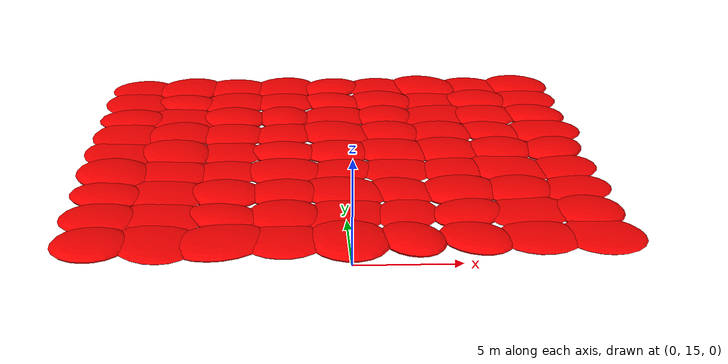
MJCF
<mujoco model="random_box_terrain">
    <compiler angle="degree" coordinate="local"/>
    <option timestep="0.01" gravity="0 0 -9.81" integrator="RK4"/>

    <asset>
        <texture type="2d" name="Plastic006_color"      file="../../textures/Plastic006_2K-PNG/Plastic006_2K-PNG_Color.png"/>
        <texture type="2d" name="Plastic006_roughness"  file="../../textures/Plastic006_2K-PNG/Plastic006_2K-PNG_Roughness.png"/>
        <texture type="2d" name="Plastic006_normal"     file="../../textures/Plastic006_2K-PNG/Plastic006_2K-PNG_NormalDX.png"/>

        <material name="pbr_plastic_black" metallic ="0.05" roughness="1.0" rgba="1 0 0 1.0">
        <layer role="rgb"        texture="Plastic006_color"/>
        <layer role="normal"     texture="Plastic006_normal"/>
        <layer role="roughness"  texture="Plastic006_roughness"/>
        </material>

        <texture type="2d" name="Plastic013A_color"      file="../../textures/Plastic013A_2K-PNG/Plastic013A_2K-PNG_Color.png"/>
        <texture type="2d" name="Plastic013A_roughness"  file="../../textures/Plastic013A_2K-PNG/Plastic013A_2K-PNG_Roughness.png"/>
        <texture type="2d" name="Plastic013A_normal"     file="../../textures/Plastic013A_2K-PNG/Plastic013A_2K-PNG_NormalDX.png"/>

        <material name="pbr_plastic_white" metallic ="0.05" roughness="1.0" rgba="1 0 0 1.0">
        <layer role="rgb"        texture="Plastic013A_color"/>
        <layer role="normal"     texture="Plastic013A_normal"/>
        <layer role="roughness"  texture="Plastic013A_roughness"/>
        </material>

        <texture type="2d" name="Plastic010_color"      file="../../textures/Plastic010_2K-PNG/Plastic010_2K-PNG_Color.png"/>
        <texture type="2d" name="Plastic010_roughness"  file="../../textures/Plastic010_2K-PNG/Plastic010_2K-PNG_Roughness.png"/>
        <texture type="2d" name="Plastic010_normal"     file="../../textures/Plastic010_2K-PNG/Plastic010_2K-PNG_NormalDX.png"/>

        <material name="pbr_plastic_gray" metallic ="0.05" roughness="1.0" rgba="1 0 0 1.0">
        <layer role="rgb"        texture="Plastic010_color"/>
        <layer role="normal"     texture="Plastic010_normal"/>
        <layer role="roughness"  texture="Plastic010_roughness"/>
        </material>
    </asset>
    <worldbody>
        <body name="offset" pos="0.0 30.0 0.0">
            <body name="terrain" pos="0.0 0.0 0.0">
                <geom type="ellipsoid" pos="-12.0 -12.0 -0.1" size="2.0 1.894 0.306" euler="0 0 84.9" material="pbr_plastic_gray"/>
                <geom type="ellipsoid" pos="-9.0 -12.0 -0.1" size="2.0 2.395 0.23" euler="0 0 21.4" material="pbr_plastic_white"/>
                <geom type="ellipsoid" pos="-6.0 -12.0 -0.1" size="2.0 2.484 0.292" euler="0 0 118.3" material="pbr_plastic_gray"/>
                <geom type="ellipsoid" pos="-3.0 -12.0 -0.1" size="2.0 2.017 0.238" euler="0 0 135.9" material="pbr_plastic_white"/>
                <geom type="ellipsoid" pos="0.0 -12.0 -0.1" size="2.0 2.397 0.342" euler="0 0 189.4" material="pbr_plastic_gray"/>
                <geom type="ellipsoid" pos="3.0 -12.0 -0.1" size="2.0 1.512 0.344" euler="0 0 288.3" material="pbr_plastic_white"/>
                <geom type="ellipsoid" pos="6.0 -12.0 -0.1" size="2.0 1.627 0.302" euler="0 0 301.4" material="pbr_plastic_gray"/>
                <geom type="ellipsoid" pos="9.0 -12.0 -0.1" size="2.0 2.006 0.226" euler="0 0 332.9" material="pbr_plastic_white"/>
                <geom type="ellipsoid" pos="12.0 -12.0 -0.1" size="2.0 2.176 0.208" euler="0 0 197.4" material="pbr_plastic_gray"/>

                <geom type="ellipsoid" pos="-12.0 -9.0 -0.1" size="2.0 1.928 0.29" euler="0 0 171.7" material="pbr_plastic_white"/>
                <geom type="ellipsoid" pos="-9.0 -9.0 -0.1" size="2.0 2.239 0.208" euler="0 0 70.4" material="pbr_plastic_gray"/>
                <geom type="ellipsoid" pos="-6.0 -9.0 -0.1" size="2.0 1.529 0.308" euler="0 0 335.2" material="pbr_plastic_white"/>
                <geom type="ellipsoid" pos="-3.0 -9.0 -0.1" size="2.0 1.896 0.346" euler="0 0 270.9" material="pbr_plastic_gray"/>
                <geom type="ellipsoid" pos="0.0 -9.0 -0.1" size="2.0 2.387 0.238" euler="0 0 339.4" material="pbr_plastic_white"/>
                <geom type="ellipsoid" pos="3.0 -9.0 -0.1" size="2.0 1.591 0.238" euler="0 0 255.8" material="pbr_plastic_gray"/>
                <geom type="ellipsoid" pos="6.0 -9.0 -0.1" size="2.0 1.612 0.338" euler="0 0 39.7" material="pbr_plastic_white"/>
                <geom type="ellipsoid" pos="9.0 -9.0 -0.1" size="2.0 2.247 0.22" euler="0 0 129.0" material="pbr_plastic_gray"/>
                <geom type="ellipsoid" pos="12.0 -9.0 -0.1" size="2.0 1.758 0.334" euler="0 0 270.6" material="pbr_plastic_white"/>

                <geom type="ellipsoid" pos="-12.0 -6.0 -0.1" size="2.0 1.681 0.326" euler="0 0 155.9" material="pbr_plastic_white"/>
                <geom type="ellipsoid" pos="-9.0 -6.0 -0.1" size="2.0 2.294 0.232" euler="0 0 202.7" material="pbr_plastic_gray"/>
                <geom type="ellipsoid" pos="-6.0 -6.0 -0.1" size="2.0 1.831 0.35" euler="0 0 147.6" material="pbr_plastic_white"/>
                <geom type="ellipsoid" pos="-3.0 -6.0 -0.1" size="2.0 1.808 0.346" euler="0 0 190.5" material="pbr_plastic_gray"/>
                <geom type="ellipsoid" pos="0.0 -6.0 -0.1" size="2.0 2.384 0.306" euler="0 0 57.4" material="pbr_plastic_white"/>
                <geom type="ellipsoid" pos="3.0 -6.0 -0.1" size="2.0 1.647 0.276" euler="0 0 122.6" material="pbr_plastic_gray"/>
                <geom type="ellipsoid" pos="6.0 -6.0 -0.1" size="2.0 2.136 0.368" euler="0 0 123.9" material="pbr_plastic_white"/>
                <geom type="ellipsoid" pos="9.0 -6.0 -0.1" size="2.0 1.841 0.334" euler="0 0 53.2" material="pbr_plastic_gray"/>
                <geom type="ellipsoid" pos="12.0 -6.0 -0.1" size="2.0 1.751 0.224" euler="0 0 220.3" material="pbr_plastic_white"/>

                <geom type="ellipsoid" pos="-12.0 -3.0 -0.1" size="2.0 2.356 0.394" euler="0 0 28.2" material="pbr_plastic_white"/>
                <geom type="ellipsoid" pos="-9.0 -3.0 -0.1" size="2.0 2.193 0.284" euler="0 0 251.2" material="pbr_plastic_gray"/>
                <geom type="ellipsoid" pos="-6.0 -3.0 -0.1" size="2.0 1.721 0.216" euler="0 0 177.7" material="pbr_plastic_white"/>
                <geom type="ellipsoid" pos="-3.0 -3.0 -0.1" size="2.0 2.193 0.328" euler="0 0 84.8" material="pbr_plastic_gray"/>
                <geom type="ellipsoid" pos="0.0 -3.0 -0.1" size="2.0 1.689 0.238" euler="0 0 39.4" material="pbr_plastic_white"/>
                <geom type="ellipsoid" pos="3.0 -3.0 -0.1" size="2.0 1.96 0.218" euler="0 0 228.0" material="pbr_plastic_gray"/>
                <geom type="ellipsoid" pos="6.0 -3.0 -0.1" size="2.0 1.742 0.254" euler="0 0 239.7" material="pbr_plastic_white"/>
                <geom type="ellipsoid" pos="9.0 -3.0 -0.1" size="2.0 2.437 0.264" euler="0 0 37.9" material="pbr_plastic_gray"/>
                <geom type="ellipsoid" pos="12.0 -3.0 -0.1" size="2.0 1.733 0.252" euler="0 0 231.2" material="pbr_plastic_white"/>

                <geom type="ellipsoid" pos="-12.0 0.0 -0.1" size="2.0 2.495 0.214" euler="0 0 24.7"  material="pbr_plastic_white"/>
                <geom type="ellipsoid" pos="-9.0 0.0 -0.1" size="2.0 2.394 0.396" euler="0 0 19.4"  material="pbr_plastic_gray"/>
                <geom type="ellipsoid" pos="-6.0 0.0 -0.1" size="2.0 1.846 0.218" euler="0 0 353.3"  material="pbr_plastic_white"/>
                <geom type="ellipsoid" pos="-3.0 0.0 -0.1" size="2.0 1.604 0.362" euler="0 0 353.1"  material="pbr_plastic_gray"/>
                <geom type="ellipsoid" pos="0.0 0.0 -0.1" size="2.0 1.8 0.342"  euler="0 0 4.3" material="pbr_plastic_white"/>
                <geom type="ellipsoid" pos="3.0 0.0 -0.1" size="2.0 2.335 0.336"  euler="0 0 240.2" material="pbr_plastic_gray"/>
                <geom type="ellipsoid" pos="6.0 0.0 -0.1" size="2.0 2.121 0.346"  euler="0 0 17.4" material="pbr_plastic_white"/>
                <geom type="ellipsoid" pos="9.0 0.0 -0.1" size="2.0 1.913 0.388"  euler="0 0 227.4" material="pbr_plastic_gray"/>
                <geom type="ellipsoid" pos="12.0 0.0 -0.1" size="2.0 1.589 0.378"  euler="0 0 56.3" material="pbr_plastic_white"/>

                <geom type="ellipsoid" pos="-12.0 3.0 -0.1" size="2.0 2.46 0.266" euler="0 0 184.0"   material="pbr_plastic_white"/>
                <geom type="ellipsoid" pos="-9.0 3.0 -0.1" size="2.0 2.34 0.368" euler="0 0 168.2"  material="pbr_plastic_gray"/>
                <geom type="ellipsoid" pos="-6.0 3.0 -0.1" size="2.0 1.985 0.32" euler="0 0 34.4"  material="pbr_plastic_white"/>
                <geom type="ellipsoid" pos="-3.0 3.0 -0.1" size="2.0 1.759 0.298" euler="0 0 230.8"  material="pbr_plastic_gray"/>
                <geom type="ellipsoid" pos="0.0 3.0 -0.1" size="2.0 2.447 0.366"  euler="0 0 45.8" material="pbr_plastic_white"/>
                <geom type="ellipsoid" pos="3.0 3.0 -0.1" size="2.0 1.979 0.398"  euler="0 0 287.3" material="pbr_plastic_gray"/>
                <geom type="ellipsoid" pos="6.0 3.0 -0.1" size="2.0 2.065 0.294"  euler="0 0 12.3" material="pbr_plastic_white"/>
                <geom type="ellipsoid" pos="9.0 3.0 -0.1" size="2.0 1.659 0.296"  euler="0 0 317.5" material="pbr_plastic_gray"/>
                <geom type="ellipsoid" pos="12.0 3.0 -0.1" size="2.0 2.248 0.304"  euler="0 0 97.9" material="pbr_plastic_white"/>

                <geom type="ellipsoid" pos="-12.0 6.0 -0.1" size="2.0 1.783 0.35" euler="0 0 180.4"  material="pbr_plastic_white"/>
                <geom type="ellipsoid" pos="-9.0 6.0 -0.1" size="2.0 2.461 0.202" euler="0 0 245.5"  material="pbr_plastic_gray"/>
                <geom type="ellipsoid" pos="-6.0 6.0 -0.1" size="2.0 1.916 0.4" euler="0 0 145.9"  material="pbr_plastic_white"/>
                <geom type="ellipsoid" pos="-3.0 6.0 -0.1" size="2.0 1.581 0.394" euler="0 0 274.8"  material="pbr_plastic_gray"/>
                <geom type="ellipsoid" pos="0.0 6.0 -0.1" size="2.0 2.122 0.29"  euler="0 0 325.7" material="pbr_plastic_white"/>
                <geom type="ellipsoid" pos="3.0 6.0 -0.1" size="2.0 1.76 0.394"  euler="0 0 86.5" material="pbr_plastic_gray"/>
                <geom type="ellipsoid" pos="6.0 6.0 -0.1" size="2.0 2.469 0.238"  euler="0 0 325.1" material="pbr_plastic_white"/>
                <geom type="ellipsoid" pos="9.0 6.0 -0.1" size="2.0 2.042 0.32"  euler="0 0 309.8" material="pbr_plastic_gray"/>
                <geom type="ellipsoid" pos="12.0 6.0 -0.1" size="2.0 1.746 0.376"  euler="0 0 135.4" material="pbr_plastic_white"/>

                <geom type="ellipsoid" pos="-12.0 9.0 -0.1" size="2.0 2.436 0.236" euler="0 0 197.9"  material="pbr_plastic_white"/>
                <geom type="ellipsoid" pos="-9.0 9.0 -0.1" size="2.0 1.577 0.35" euler="0 0 344.8"  material="pbr_plastic_gray"/>
                <geom type="ellipsoid" pos="-6.0 9.0 -0.1" size="2.0 2.207 0.308" euler="0 0 143.6"  material="pbr_plastic_white"/>
                <geom type="ellipsoid" pos="-3.0 9.0 -0.1" size="2.0 1.94 0.288" euler="0 0 345.0"  material="pbr_plastic_gray"/>
                <geom type="ellipsoid" pos="0.0 9.0 -0.1" size="2.0 1.654 0.358"  euler="0 0 146.1" material="pbr_plastic_white"/>
                <geom type="ellipsoid" pos="3.0 9.0 -0.1" size="2.0 2.123 0.366"  euler="0 0 49.1" material="pbr_plastic_gray"/>
                <geom type="ellipsoid" pos="6.0 9.0 -0.1" size="2.0 1.82 0.228"  euler="0 0 80.7" material="pbr_plastic_white"/>
                <geom type="ellipsoid" pos="9.0 9.0 -0.1" size="2.0 1.974 0.394"  euler="0 0 359.5" material="pbr_plastic_gray"/>
                <geom type="ellipsoid" pos="12.0 9.0 -0.1" size="2.0 2.12 0.272"  euler="0 0 178.7" material="pbr_plastic_white"/>

                <geom type="ellipsoid" pos="-12.0 12.0 -0.1" size="2.0 1.901 0.226" euler="0 0 58.3"  material="pbr_plastic_white"/>
                <geom type="ellipsoid" pos="-9.0 12.0 -0.1" size="2.0 2.382 0.36" euler="0 0 156.5"  material="pbr_plastic_gray"/>
                <geom type="ellipsoid" pos="-6.0 12.0 -0.1" size="2.0 2.16 0.306" euler="0 0 64.2"  material="pbr_plastic_white"/>
                <geom type="ellipsoid" pos="-3.0 12.0 -0.1" size="2.0 2.376 0.308" euler="0 0 161.1"  material="pbr_plastic_gray"/>
                <geom type="ellipsoid" pos="0.0 12.0 -0.1" size="2.0 1.687 0.394"  euler="0 0 38.8" material="pbr_plastic_white"/>
                <geom type="ellipsoid" pos="3.0 12.0 -0.1" size="2.0 2.032 0.238"  euler="0 0 189.7" material="pbr_plastic_gray"/>
                <geom type="ellipsoid" pos="6.0 12.0 -0.1" size="2.0 2.416 0.382"  euler="0 0 210.5" material="pbr_plastic_white"/>
                <geom type="ellipsoid" pos="9.0 12.0 -0.1" size="2.0 1.797 0.248"  euler="0 0 317.8" material="pbr_plastic_gray"/>
                <geom type="ellipsoid" pos="12.0 12.0 -0.1" size="2.0 2.216 0.368"  euler="0 0 199.4" material="pbr_plastic_white"/>
            </body>
        </body>
    </worldbody>

    <actuator>
        <!-- 在这里你可以定义一些控制器 -->
    </actuator>

</mujoco>
